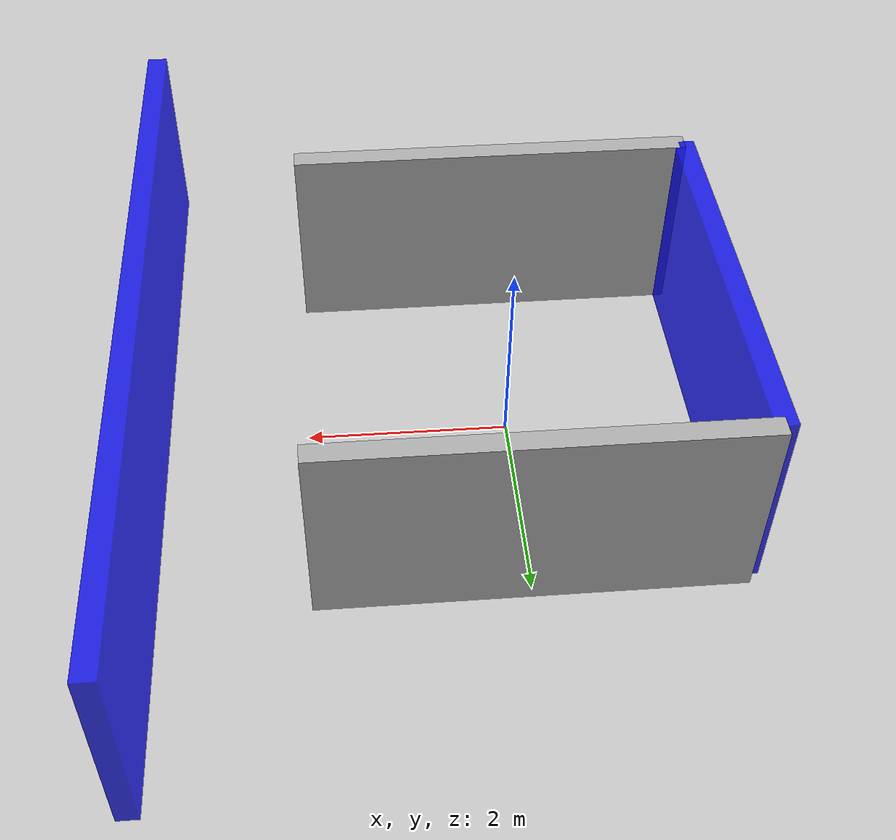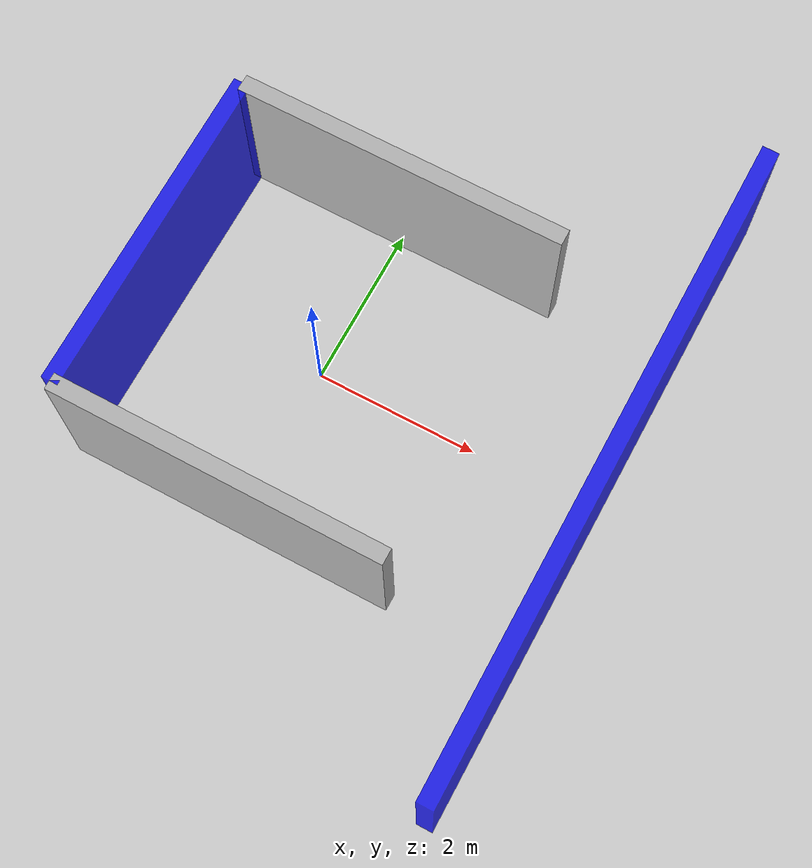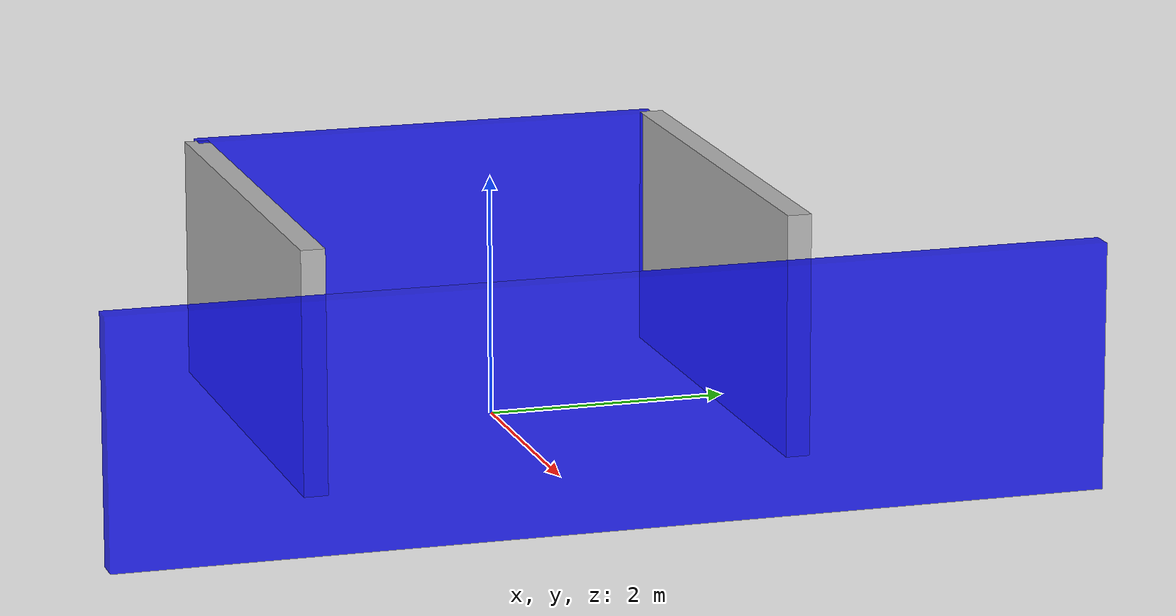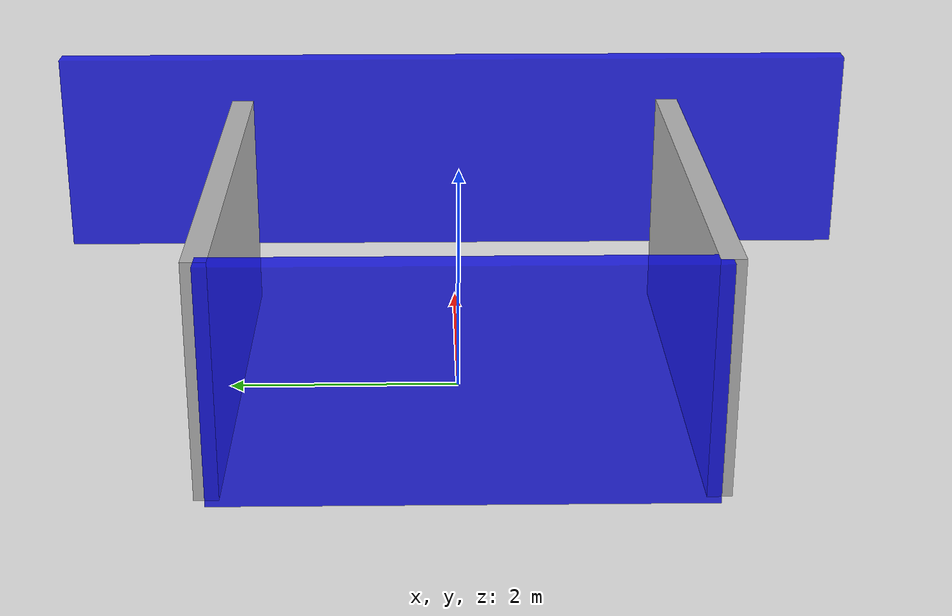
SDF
<sdf version='1.4'>
  <world name='terrain'>

    <model name='Box01'>
      <pose>3.5 0.0 1 0 0 0</pose>
      <link name='Box01'>
        <pose>0 0 0 0 0 0</pose>
        <collision name='collision'>
          <geometry>
            <box>
              <size>0.2 8 2</size>
            </box>
          </geometry>
        </collision>
        <visual name='visual'>
          <geometry>
            <box>
              <size>0.2 8 2</size>
            </box>
          </geometry>
          <material>
            <diffuse>0 0 1 .8</diffuse>
            <ambient>0 0 1 .8</ambient>
          </material>
        </visual>
      </link>0
      <static>1</static>
    </model>

    <model name='Box02'>
      <pose>0.00 2 1 0 0 1.571</pose>
      <link name='Box02'>
        <pose>0 0 0 0 0 0</pose>
        <collision name='collision'>
          <geometry>
            <box>
              <size>0.2 4 2</size>
            </box>
          </geometry>
        </collision>
        <visual name='visual'>
          <geometry>
            <box>
              <size>0.2 4 2</size>
            </box>
          </geometry>
        </visual>
      </link>
      <static>1</static>
    </model>

    <model name='Box03'>
      <pose>0.00 -2 1 0 0 1.571</pose>
      <link name='Box03'>
        <pose>0 0 0 0 0 0</pose>
        <collision name='collision'>
          <geometry>
            <box>
              <size>0.2 4 2</size>
            </box>
          </geometry>
        </collision>
        <visual name='visual'>
          <geometry>
            <box>
              <size>0.2 4 2</size>
            </box>
          </geometry>
        </visual>
      </link>
      <static>1</static>
    </model>

    <model name='Box04'>
      <pose>-2 0.0 1 0 0 0</pose>
      <link name='Box04'>
        <pose>0 0 0 0 0 0</pose>
        <collision name='collision'>
          <geometry>
            <box>
              <size>0.2 4 2</size>
            </box>
          </geometry>
        </collision>
        <visual name='visual'>
          <geometry>
            <box>
              <size>0.2 4 2</size>
            </box>
          </geometry>
          <material>
            <diffuse>0 0 1 .8</diffuse>
            <ambient>0 0 1 .8</ambient>
          </material>
        </visual>
      </link>0
      <static>1</static>
    </model>

  </world>
</sdf>
